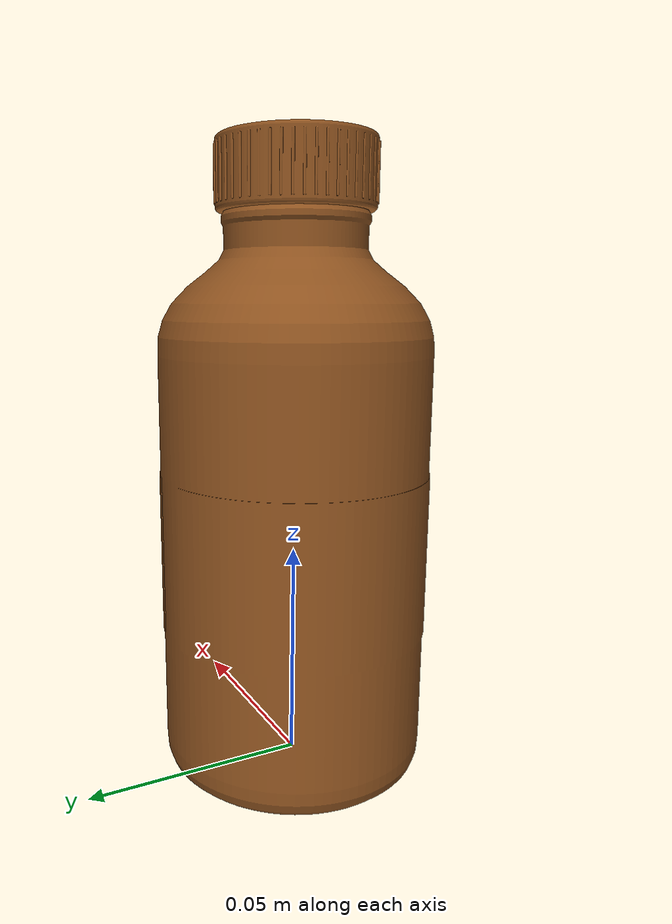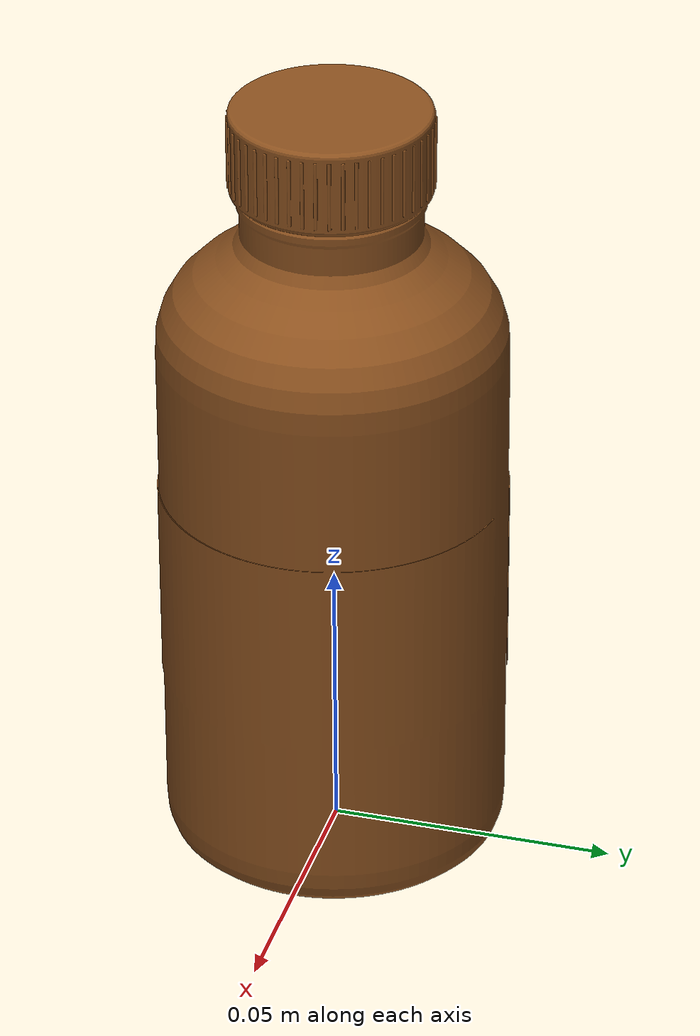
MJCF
<?xml version="1.0" encoding="utf-8"?>
<mujoco model="reagent_bottle">
  <compiler angle="radian" meshdir="../../assets" autolimits="true"/>

  <asset>
    <mesh name="reagent_bottle-visual" file="container/reagent_bottle_vis.obj"/>
    <material name="reagent_bottle_glass" rgba="0.55 0.32 0.12 1"/>
  </asset>

  <worldbody>
    <body name="reagent_bottle_body">
      <geom name="reagent_bottle-visual" type="mesh" mesh="reagent_bottle-visual" material="reagent_bottle_glass"
            contype="0" conaffinity="0" density="0" group="2"
            pos="0 0 0.07" quat="0.7071068 0.7071068 0 0"/>
      <geom name="reagent_bottle_body_collision" type="cylinder" size="0.0303 0.055" pos="0 0 0.055" group="3"/>
      <geom name="reagent_bottle_neck_collision" type="cylinder" size="0.018 0.015" pos="0 0 0.125" group="3"/>
      <site name="grasp_site" pos="0 0 0.07" size="0.005" rgba="1 0 0 1" group="4"/>
      <inertial pos="0 0 0.06" mass="0.15" diaginertia="0.00025 0.00025 0.00008"/>
    </body>
  </worldbody>
</mujoco>
